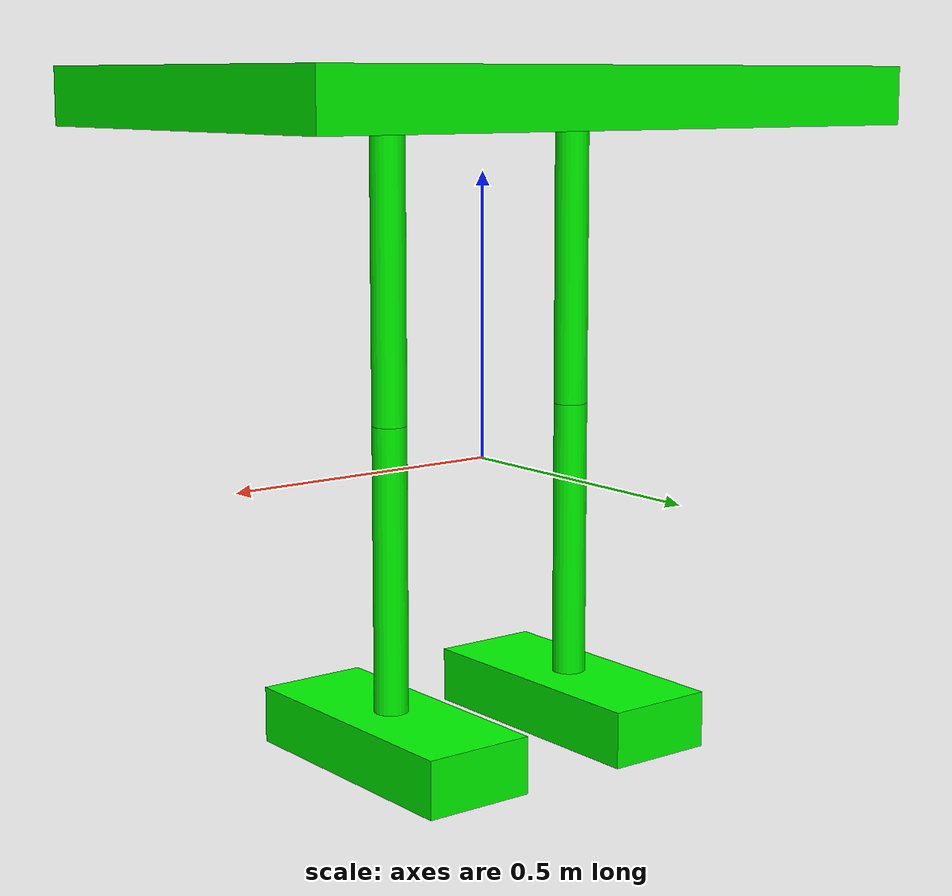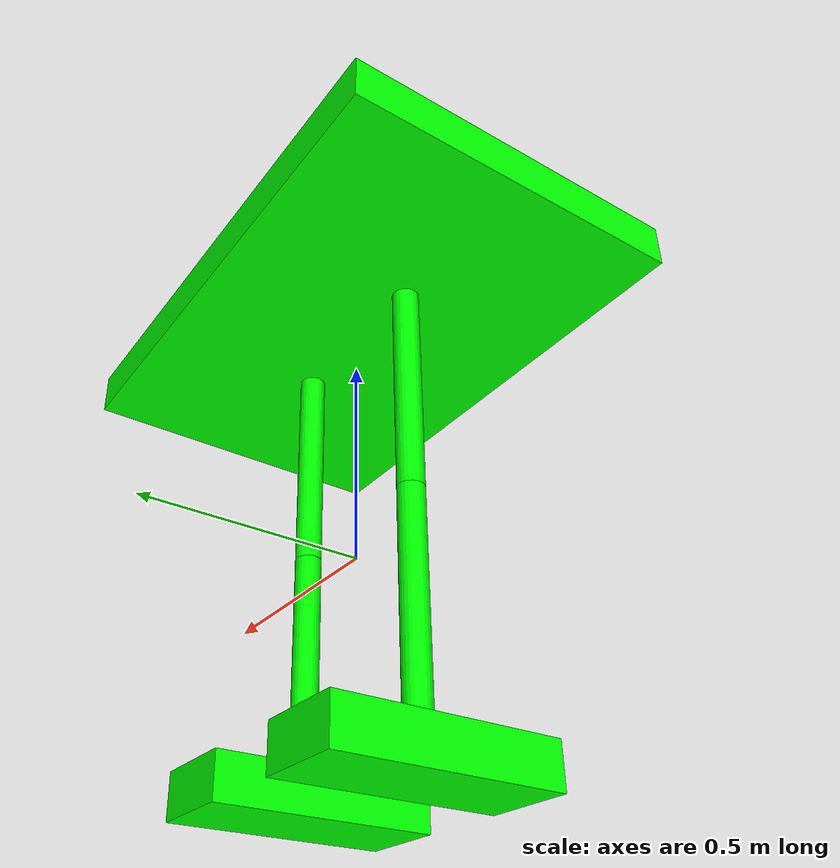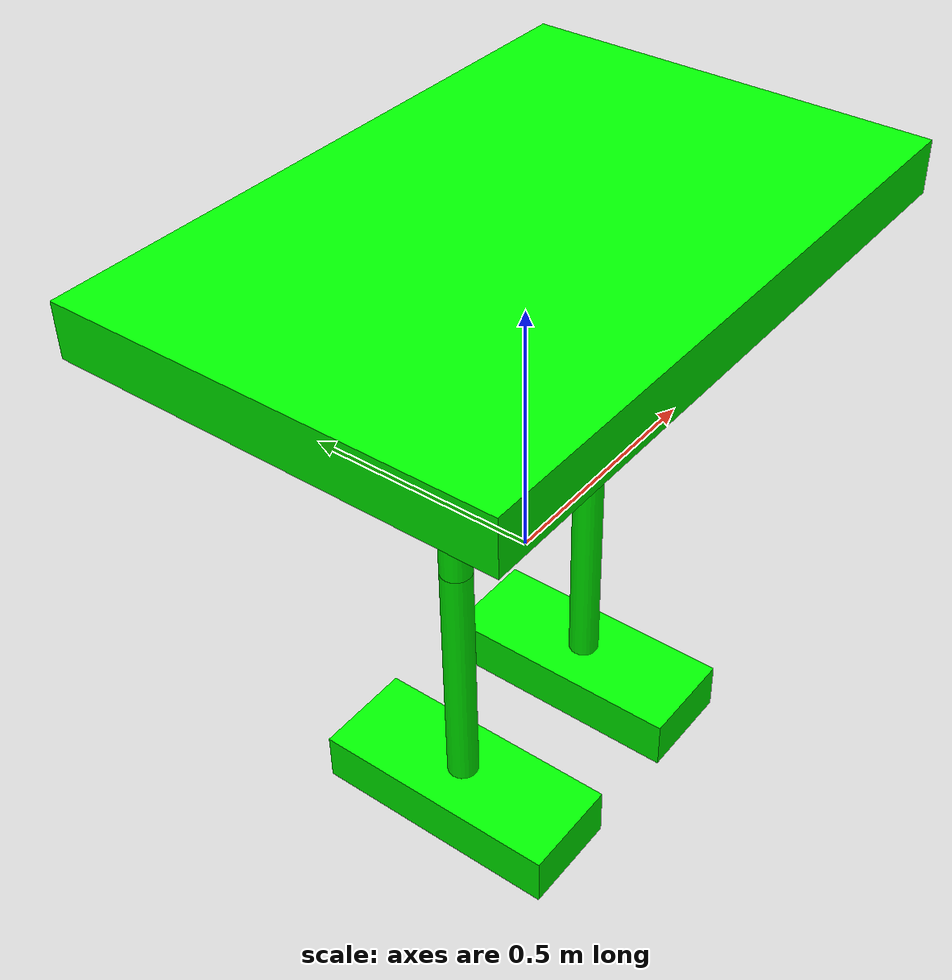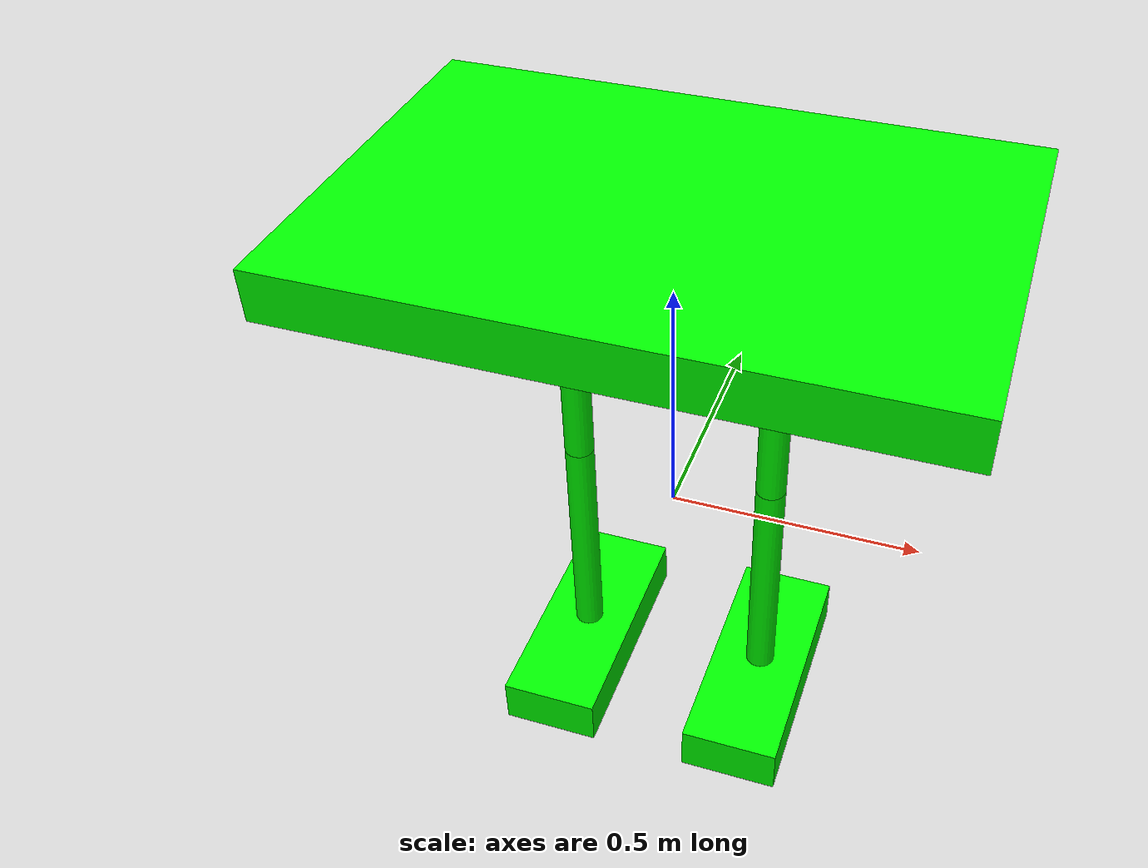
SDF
<?xml version='1.0'?>
<sdf version='1.6'>
  <model name='humanoid'>
    <link name='link_0'>
      <pose frame=''>-0.2 0 -0.471429 0 -0 0</pose>
      <inertial>
        <mass>1</mass>
        <inertia>
          <ixx>0.166667</ixx>
          <ixy>0</ixy>
          <ixz>0</ixz>
          <iyy>0.166667</iyy>
          <iyz>0</iyz>
          <izz>0.166667</izz>
        </inertia>
        <pose frame=''>0 0 0 0 -0 0</pose>
      </inertial>
      <gravity>1</gravity>
      <self_collide>0</self_collide>
      <kinematic>0</kinematic>
      <visual name='visual'>
        <pose frame=''>0 0 0 0 -0 0</pose>
        <geometry>
          <box>
            <size>0.2 0.5 0.1</size>
          </box>
        </geometry>
        <material>
          <lighting>1</lighting>
          <script>
            <uri>file://media/materials/scripts/gazebo.material</uri>
            <name>Gazebo/Grey</name>
          </script>
          <shader type='pixel'>
            <normal_map>__default__</normal_map>
          </shader>
          <ambient>0 1 0 1</ambient>
          <diffuse>0.7 0.7 0.7 1</diffuse>
          <specular>0.01 0.01 0.01 1</specular>
          <emissive>0 0 0 1</emissive>
        </material>
        <transparency>0</transparency>
        <cast_shadows>1</cast_shadows>
      </visual>
      <collision name='collision'>
        <laser_retro>0</laser_retro>
        <max_contacts>10</max_contacts>
        <pose frame=''>0 0 0 0 -0 0</pose>
        <geometry>
          <box>
            <size>0.2 0.5 0.1</size>
          </box>
        </geometry>
        <surface>
          <friction>
            <ode>
              <mu>1</mu>
              <mu2>1</mu2>
              <fdir1>0 0 0</fdir1>
              <slip1>0</slip1>
              <slip2>0</slip2>
            </ode>
            <torsional>
              <coefficient>1</coefficient>
              <patch_radius>0</patch_radius>
              <surface_radius>0</surface_radius>
              <use_patch_radius>1</use_patch_radius>
              <ode>
                <slip>0</slip>
              </ode>
            </torsional>
          </friction>
          <bounce>
            <restitution_coefficient>0</restitution_coefficient>
            <threshold>1e+06</threshold>
          </bounce>
          <contact>
            <collide_without_contact>0</collide_without_contact>
            <collide_without_contact_bitmask>1</collide_without_contact_bitmask>
            <collide_bitmask>1</collide_bitmask>
            <ode>
              <soft_cfm>0</soft_cfm>
              <soft_erp>0.2</soft_erp>
              <kp>1e+13</kp>
              <kd>1</kd>
              <max_vel>0.01</max_vel>
              <min_depth>0</min_depth>
            </ode>
            <bullet>
              <split_impulse>1</split_impulse>
              <split_impulse_penetration_threshold>-0.01</split_impulse_penetration_threshold>
              <soft_cfm>0</soft_cfm>
              <soft_erp>0.2</soft_erp>
              <kp>1e+13</kp>
              <kd>1</kd>
            </bullet>
          </contact>
        </surface>
      </collision>
    </link>
    <link name='link_0_clone'>
      <pose frame=''>0.2 0 -0.471429 0 -0 0</pose>
      <inertial>
        <mass>1</mass>
        <inertia>
          <ixx>0.166667</ixx>
          <ixy>0</ixy>
          <ixz>0</ixz>
          <iyy>0.166667</iyy>
          <iyz>0</iyz>
          <izz>0.166667</izz>
        </inertia>
        <pose frame=''>0 0 0 0 -0 0</pose>
      </inertial>
      <self_collide>0</self_collide>
      <kinematic>0</kinematic>
      <gravity>1</gravity>
      <visual name='visual'>
        <pose frame=''>0 0 0 0 -0 0</pose>
        <geometry>
          <box>
            <size>0.2 0.5 0.1</size>
          </box>
        </geometry>
        <material>
          <lighting>1</lighting>
          <script>
            <uri>file://media/materials/scripts/gazebo.material</uri>
            <name>Gazebo/Grey</name>
          </script>
          <shader type='pixel'>
            <normal_map>__default__</normal_map>
          </shader>
          <ambient>0 1 0 1</ambient>
          <diffuse>0.7 0.7 0.7 1</diffuse>
          <specular>0.01 0.01 0.01 1</specular>
          <emissive>0 0 0 1</emissive>
        </material>
        <transparency>0</transparency>
        <cast_shadows>1</cast_shadows>
      </visual>
      <collision name='collision'>
        <laser_retro>0</laser_retro>
        <max_contacts>10</max_contacts>
        <pose frame=''>0 0 0 0 -0 0</pose>
        <geometry>
          <box>
            <size>0.2 0.5 0.1</size>
          </box>
        </geometry>
        <surface>
          <friction>
            <ode>
              <mu>1</mu>
              <mu2>1</mu2>
              <fdir1>0 0 0</fdir1>
              <slip1>0</slip1>
              <slip2>0</slip2>
            </ode>
            <torsional>
              <coefficient>1</coefficient>
              <patch_radius>0</patch_radius>
              <surface_radius>0</surface_radius>
              <use_patch_radius>1</use_patch_radius>
              <ode>
                <slip>0</slip>
              </ode>
            </torsional>
          </friction>
          <bounce>
            <restitution_coefficient>0</restitution_coefficient>
            <threshold>1e+06</threshold>
          </bounce>
          <contact>
            <collide_without_contact>0</collide_without_contact>
            <collide_without_contact_bitmask>1</collide_without_contact_bitmask>
            <collide_bitmask>1</collide_bitmask>
            <ode>
              <soft_cfm>0</soft_cfm>
              <soft_erp>0.2</soft_erp>
              <kp>1e+13</kp>
              <kd>1</kd>
              <max_vel>0.01</max_vel>
              <min_depth>0</min_depth>
            </ode>
            <bullet>
              <split_impulse>1</split_impulse>
              <split_impulse_penetration_threshold>-0.01</split_impulse_penetration_threshold>
              <soft_cfm>0</soft_cfm>
              <soft_erp>0.2</soft_erp>
              <kp>1e+13</kp>
              <kd>1</kd>
            </bullet>
          </contact>
        </surface>
      </collision>
    </link>
    <link name='link_1'>
      <pose frame=''>-0.2 0 -0.171429 0 -0 0</pose>
      <inertial>
        <mass>1</mass>
        <inertia>
          <ixx>0.145833</ixx>
          <ixy>0</ixy>
          <ixz>0</ixz>
          <iyy>0.145833</iyy>
          <iyz>0</iyz>
          <izz>0.125</izz>
        </inertia>
        <pose frame=''>0 0 0 0 -0 0</pose>
      </inertial>
      <gravity>1</gravity>
      <self_collide>0</self_collide>
      <kinematic>0</kinematic>
      <visual name='visual'>
        <pose frame=''>0 0 0 0 -0 0</pose>
        <geometry>
          <cylinder>
            <radius>0.03</radius>
            <length>0.5</length>
          </cylinder>
        </geometry>
        <material>
          <lighting>1</lighting>
          <script>
            <uri>file://media/materials/scripts/gazebo.material</uri>
            <name>Gazebo/Grey</name>
          </script>
          <shader type='pixel'>
            <normal_map>__default__</normal_map>
          </shader>
          <ambient>0 1 0 1</ambient>
          <diffuse>0.7 0.7 0.7 1</diffuse>
          <specular>0.01 0.01 0.01 1</specular>
          <emissive>0 0 0 1</emissive>
        </material>
        <transparency>0</transparency>
        <cast_shadows>1</cast_shadows>
      </visual>
      <collision name='collision'>
        <laser_retro>0</laser_retro>
        <max_contacts>10</max_contacts>
        <pose frame=''>0 0 0 0 -0 0</pose>
        <geometry>
          <cylinder>
            <radius>0.03</radius>
            <length>0.5</length>
          </cylinder>
        </geometry>
        <surface>
          <friction>
            <ode>
              <mu>1</mu>
              <mu2>1</mu2>
              <fdir1>0 0 0</fdir1>
              <slip1>0</slip1>
              <slip2>0</slip2>
            </ode>
            <torsional>
              <coefficient>1</coefficient>
              <patch_radius>0</patch_radius>
              <surface_radius>0</surface_radius>
              <use_patch_radius>1</use_patch_radius>
              <ode>
                <slip>0</slip>
              </ode>
            </torsional>
          </friction>
          <bounce>
            <restitution_coefficient>0</restitution_coefficient>
            <threshold>1e+06</threshold>
          </bounce>
          <contact>
            <collide_without_contact>0</collide_without_contact>
            <collide_without_contact_bitmask>1</collide_without_contact_bitmask>
            <collide_bitmask>1</collide_bitmask>
            <ode>
              <soft_cfm>0</soft_cfm>
              <soft_erp>0.2</soft_erp>
              <kp>1e+13</kp>
              <kd>1</kd>
              <max_vel>0.01</max_vel>
              <min_depth>0</min_depth>
            </ode>
            <bullet>
              <split_impulse>1</split_impulse>
              <split_impulse_penetration_threshold>-0.01</split_impulse_penetration_threshold>
              <soft_cfm>0</soft_cfm>
              <soft_erp>0.2</soft_erp>
              <kp>1e+13</kp>
              <kd>1</kd>
            </bullet>
          </contact>
        </surface>
      </collision>
    </link>
    <link name='link_1_clone'>
      <pose frame=''>-0.2 0 0.328571 0 -0 0</pose>
      <inertial>
        <mass>1</mass>
        <inertia>
          <ixx>0.145833</ixx>
          <ixy>0</ixy>
          <ixz>0</ixz>
          <iyy>0.145833</iyy>
          <iyz>0</iyz>
          <izz>0.125</izz>
        </inertia>
        <pose frame=''>0 0 0 0 -0 0</pose>
      </inertial>
      <self_collide>0</self_collide>
      <kinematic>0</kinematic>
      <gravity>1</gravity>
      <visual name='visual'>
        <pose frame=''>0 0 0 0 -0 0</pose>
        <geometry>
          <cylinder>
            <radius>0.03</radius>
            <length>0.5</length>
          </cylinder>
        </geometry>
        <material>
          <lighting>1</lighting>
          <script>
            <uri>file://media/materials/scripts/gazebo.material</uri>
            <name>Gazebo/Grey</name>
          </script>
          <shader type='pixel'>
            <normal_map>__default__</normal_map>
          </shader>
          <ambient>0 1 0 1</ambient>
          <diffuse>0.7 0.7 0.7 1</diffuse>
          <specular>0.01 0.01 0.01 1</specular>
          <emissive>0 0 0 1</emissive>
        </material>
        <transparency>0</transparency>
        <cast_shadows>1</cast_shadows>
      </visual>
      <collision name='collision'>
        <laser_retro>0</laser_retro>
        <max_contacts>10</max_contacts>
        <pose frame=''>0 0 0 0 -0 0</pose>
        <geometry>
          <cylinder>
            <radius>0.03</radius>
            <length>0.5</length>
          </cylinder>
        </geometry>
        <surface>
          <friction>
            <ode>
              <mu>1</mu>
              <mu2>1</mu2>
              <fdir1>0 0 0</fdir1>
              <slip1>0</slip1>
              <slip2>0</slip2>
            </ode>
            <torsional>
              <coefficient>1</coefficient>
              <patch_radius>0</patch_radius>
              <surface_radius>0</surface_radius>
              <use_patch_radius>1</use_patch_radius>
              <ode>
                <slip>0</slip>
              </ode>
            </torsional>
          </friction>
          <bounce>
            <restitution_coefficient>0</restitution_coefficient>
            <threshold>1e+06</threshold>
          </bounce>
          <contact>
            <collide_without_contact>0</collide_without_contact>
            <collide_without_contact_bitmask>1</collide_without_contact_bitmask>
            <collide_bitmask>1</collide_bitmask>
            <ode>
              <soft_cfm>0</soft_cfm>
              <soft_erp>0.2</soft_erp>
              <kp>1e+13</kp>
              <kd>1</kd>
              <max_vel>0.01</max_vel>
              <min_depth>0</min_depth>
            </ode>
            <bullet>
              <split_impulse>1</split_impulse>
              <split_impulse_penetration_threshold>-0.01</split_impulse_penetration_threshold>
              <soft_cfm>0</soft_cfm>
              <soft_erp>0.2</soft_erp>
              <kp>1e+13</kp>
              <kd>1</kd>
            </bullet>
          </contact>
        </surface>
      </collision>
    </link>
    <link name='link_1_clone_0'>
      <pose frame=''>0.2 0 -0.171429 0 -0 0</pose>
      <inertial>
        <mass>1</mass>
        <inertia>
          <ixx>0.145833</ixx>
          <ixy>0</ixy>
          <ixz>0</ixz>
          <iyy>0.145833</iyy>
          <iyz>0</iyz>
          <izz>0.125</izz>
        </inertia>
        <pose frame=''>0 0 0 0 -0 0</pose>
      </inertial>
      <self_collide>0</self_collide>
      <kinematic>0</kinematic>
      <gravity>1</gravity>
      <visual name='visual'>
        <pose frame=''>0 0 0 0 -0 0</pose>
        <geometry>
          <cylinder>
            <radius>0.03</radius>
            <length>0.5</length>
          </cylinder>
        </geometry>
        <material>
          <lighting>1</lighting>
          <script>
            <uri>file://media/materials/scripts/gazebo.material</uri>
            <name>Gazebo/Grey</name>
          </script>
          <shader type='pixel'>
            <normal_map>__default__</normal_map>
          </shader>
          <ambient>0 1 0 1</ambient>
          <diffuse>0.7 0.7 0.7 1</diffuse>
          <specular>0.01 0.01 0.01 1</specular>
          <emissive>0 0 0 1</emissive>
        </material>
        <transparency>0</transparency>
        <cast_shadows>1</cast_shadows>
      </visual>
      <collision name='collision'>
        <laser_retro>0</laser_retro>
        <max_contacts>10</max_contacts>
        <pose frame=''>0 0 0 0 -0 0</pose>
        <geometry>
          <cylinder>
            <radius>0.03</radius>
            <length>0.5</length>
          </cylinder>
        </geometry>
        <surface>
          <friction>
            <ode>
              <mu>1</mu>
              <mu2>1</mu2>
              <fdir1>0 0 0</fdir1>
              <slip1>0</slip1>
              <slip2>0</slip2>
            </ode>
            <torsional>
              <coefficient>1</coefficient>
              <patch_radius>0</patch_radius>
              <surface_radius>0</surface_radius>
              <use_patch_radius>1</use_patch_radius>
              <ode>
                <slip>0</slip>
              </ode>
            </torsional>
          </friction>
          <bounce>
            <restitution_coefficient>0</restitution_coefficient>
            <threshold>1e+06</threshold>
          </bounce>
          <contact>
            <collide_without_contact>0</collide_without_contact>
            <collide_without_contact_bitmask>1</collide_without_contact_bitmask>
            <collide_bitmask>1</collide_bitmask>
            <ode>
              <soft_cfm>0</soft_cfm>
              <soft_erp>0.2</soft_erp>
              <kp>1e+13</kp>
              <kd>1</kd>
              <max_vel>0.01</max_vel>
              <min_depth>0</min_depth>
            </ode>
            <bullet>
              <split_impulse>1</split_impulse>
              <split_impulse_penetration_threshold>-0.01</split_impulse_penetration_threshold>
              <soft_cfm>0</soft_cfm>
              <soft_erp>0.2</soft_erp>
              <kp>1e+13</kp>
              <kd>1</kd>
            </bullet>
          </contact>
        </surface>
      </collision>
    </link>
    <link name='link_1_clone_clone'>
      <pose frame=''>0.2 0 0.328571 0 -0 0</pose>
      <inertial>
        <mass>1</mass>
        <inertia>
          <ixx>0.145833</ixx>
          <ixy>0</ixy>
          <ixz>0</ixz>
          <iyy>0.145833</iyy>
          <iyz>0</iyz>
          <izz>0.125</izz>
        </inertia>
        <pose frame=''>0 0 0 0 -0 0</pose>
      </inertial>
      <self_collide>0</self_collide>
      <kinematic>0</kinematic>
      <gravity>1</gravity>
      <visual name='visual'>
        <pose frame=''>0 0 0 0 -0 0</pose>
        <geometry>
          <cylinder>
            <radius>0.03</radius>
            <length>0.5</length>
          </cylinder>
        </geometry>
        <material>
          <lighting>1</lighting>
          <script>
            <uri>file://media/materials/scripts/gazebo.material</uri>
            <name>Gazebo/Grey</name>
          </script>
          <shader type='pixel'>
            <normal_map>__default__</normal_map>
          </shader>
          <ambient>0 1 0 1</ambient>
          <diffuse>0.7 0.7 0.7 1</diffuse>
          <specular>0.01 0.01 0.01 1</specular>
          <emissive>0 0 0 1</emissive>
        </material>
        <transparency>0</transparency>
        <cast_shadows>1</cast_shadows>
      </visual>
      <collision name='collision'>
        <laser_retro>0</laser_retro>
        <max_contacts>10</max_contacts>
        <pose frame=''>0 0 0 0 -0 0</pose>
        <geometry>
          <cylinder>
            <radius>0.03</radius>
            <length>0.5</length>
          </cylinder>
        </geometry>
        <surface>
          <friction>
            <ode>
              <mu>1</mu>
              <mu2>1</mu2>
              <fdir1>0 0 0</fdir1>
              <slip1>0</slip1>
              <slip2>0</slip2>
            </ode>
            <torsional>
              <coefficient>1</coefficient>
              <patch_radius>0</patch_radius>
              <surface_radius>0</surface_radius>
              <use_patch_radius>1</use_patch_radius>
              <ode>
                <slip>0</slip>
              </ode>
            </torsional>
          </friction>
          <bounce>
            <restitution_coefficient>0</restitution_coefficient>
            <threshold>1e+06</threshold>
          </bounce>
          <contact>
            <collide_without_contact>0</collide_without_contact>
            <collide_without_contact_bitmask>1</collide_without_contact_bitmask>
            <collide_bitmask>1</collide_bitmask>
            <ode>
              <soft_cfm>0</soft_cfm>
              <soft_erp>0.2</soft_erp>
              <kp>1e+13</kp>
              <kd>1</kd>
              <max_vel>0.01</max_vel>
              <min_depth>0</min_depth>
            </ode>
            <bullet>
              <split_impulse>1</split_impulse>
              <split_impulse_penetration_threshold>-0.01</split_impulse_penetration_threshold>
              <soft_cfm>0</soft_cfm>
              <soft_erp>0.2</soft_erp>
              <kp>1e+13</kp>
              <kd>1</kd>
            </bullet>
          </contact>
        </surface>
      </collision>
    </link>
    <link name='link_3'>
      <pose frame=''>0 0 0.628571 0 -0 0</pose>
      <inertial>
        <mass>1</mass>
        <inertia>
          <ixx>0.166667</ixx>
          <ixy>0</ixy>
          <ixz>0</ixz>
          <iyy>0.166667</iyy>
          <iyz>0</iyz>
          <izz>0.166667</izz>
        </inertia>
        <pose frame=''>0 0 0 0 -0 0</pose>
      </inertial>
      <gravity>1</gravity>
      <self_collide>0</self_collide>
      <kinematic>0</kinematic>
      <visual name='visual'>
        <pose frame=''>0 0 0 0 -0 0</pose>
        <geometry>
          <box>
            <size>1.2 0.8 0.1</size>
          </box>
        </geometry>
        <material>
          <lighting>1</lighting>
          <script>
            <uri>file://media/materials/scripts/gazebo.material</uri>
            <name>Gazebo/Grey</name>
          </script>
          <shader type='pixel'>
            <normal_map>__default__</normal_map>
          </shader>
          <ambient>0 1 0 1</ambient>
          <diffuse>0.7 0.7 0.7 1</diffuse>
          <specular>0.01 0.01 0.01 1</specular>
          <emissive>0 0 0 1</emissive>
        </material>
        <transparency>0</transparency>
        <cast_shadows>1</cast_shadows>
      </visual>
      <collision name='collision'>
        <laser_retro>0</laser_retro>
        <max_contacts>10</max_contacts>
        <pose frame=''>0 0 0 0 -0 0</pose>
        <geometry>
          <box>
            <size>1.2 0.8 0.1</size>
          </box>
        </geometry>
        <surface>
          <friction>
            <ode>
              <mu>1</mu>
              <mu2>1</mu2>
              <fdir1>0 0 0</fdir1>
              <slip1>0</slip1>
              <slip2>0</slip2>
            </ode>
            <torsional>
              <coefficient>1</coefficient>
              <patch_radius>0</patch_radius>
              <surface_radius>0</surface_radius>
              <use_patch_radius>1</use_patch_radius>
              <ode>
                <slip>0</slip>
              </ode>
            </torsional>
          </friction>
          <bounce>
            <restitution_coefficient>0</restitution_coefficient>
            <threshold>1e+06</threshold>
          </bounce>
          <contact>
            <collide_without_contact>0</collide_without_contact>
            <collide_without_contact_bitmask>1</collide_without_contact_bitmask>
            <collide_bitmask>1</collide_bitmask>
            <ode>
              <soft_cfm>0</soft_cfm>
              <soft_erp>0.2</soft_erp>
              <kp>1e+13</kp>
              <kd>1</kd>
              <max_vel>0.01</max_vel>
              <min_depth>0</min_depth>
            </ode>
            <bullet>
              <split_impulse>1</split_impulse>
              <split_impulse_penetration_threshold>-0.01</split_impulse_penetration_threshold>
              <soft_cfm>0</soft_cfm>
              <soft_erp>0.2</soft_erp>
              <kp>1e+13</kp>
              <kd>1</kd>
            </bullet>
          </contact>
        </surface>
      </collision>
    </link>
    <joint name='link_1_JOINT_3' type='fixed'>
      <parent>link_1</parent>
      <child>link_0</child>
      <pose frame=''>0 0 0 0 -0 0</pose>
      <physics>
        <ode>
          <limit>
            <cfm>0</cfm>
            <erp>0.2</erp>
          </limit>
          <suspension>
            <cfm>0</cfm>
            <erp>0.2</erp>
          </suspension>
        </ode>
      </physics>
    </joint>
    <joint name='link_1_clone_0_JOINT_2' type='fixed'>
      <parent>link_1_clone_0</parent>
      <child>link_0_clone</child>
      <pose frame=''>0 0 0 0 -0 0</pose>
      <physics>
        <ode>
          <limit>
            <cfm>0</cfm>
            <erp>0.2</erp>
          </limit>
          <suspension>
            <cfm>0</cfm>
            <erp>0.2</erp>
          </suspension>
        </ode>
      </physics>
    </joint>
    <joint name='link_1_clone_JOINT_1' type='universal'>
      <parent>link_1_clone</parent>
      <child>link_1</child>
      <pose frame=''>0 0 0 0 -0 0</pose>
      <axis>
        <xyz>1 0 0</xyz>
        <use_parent_model_frame>0</use_parent_model_frame>
        <limit>
          <lower>-0.5</lower>
          <upper>0.5</upper>
          <effort>-1</effort>
          <velocity>-1</velocity>
        </limit>
        <dynamics>
          <spring_reference>0</spring_reference>
          <spring_stiffness>0</spring_stiffness>
          <damping>0</damping>
        </dynamics>
      </axis>
      <axis2>
        <xyz>0 1 0</xyz>
        <use_parent_model_frame>0</use_parent_model_frame>
        <dynamics>
          <spring_reference>0</spring_reference>
          <spring_stiffness>0</spring_stiffness>
          <damping>0</damping>
        </dynamics>
        <limit>
          <lower>-0.5</lower>
          <upper>0.5</upper>
          <effort>-1</effort>
          <velocity>-1</velocity>
        </limit>
      </axis2>
      <physics>
        <ode>
          <limit>
            <cfm>0</cfm>
            <erp>0.2</erp>
          </limit>
          <suspension>
            <cfm>0</cfm>
            <erp>0.2</erp>
          </suspension>
        </ode>
      </physics>
    </joint>
    <joint name='link_1_clone_clone_JOINT_4' type='universal'>
      <parent>link_1_clone_clone</parent>
      <child>link_1_clone_0</child>
      <pose frame=''>0 0 0 0 -0 0</pose>
      <axis>
        <xyz>1 0 0</xyz>
        <use_parent_model_frame>0</use_parent_model_frame>
        <limit>
          <lower>-0.5</lower>
          <upper>0.5</upper>
          <effort>-1</effort>
          <velocity>-1</velocity>
        </limit>
        <dynamics>
          <spring_reference>0</spring_reference>
          <spring_stiffness>0</spring_stiffness>
          <damping>0</damping>
        </dynamics>
      </axis>
      <axis2>
        <xyz>0 1 0</xyz>
        <use_parent_model_frame>0</use_parent_model_frame>
        <dynamics>
          <spring_reference>0</spring_reference>
          <spring_stiffness>0</spring_stiffness>
          <damping>0</damping>
        </dynamics>
        <limit>
          <lower>-0.5</lower>
          <upper>0.5</upper>
          <effort>-1</effort>
          <velocity>-1</velocity>
        </limit>
      </axis2>
      <physics>
        <ode>
          <limit>
            <cfm>0</cfm>
            <erp>0.2</erp>
          </limit>
          <suspension>
            <cfm>0</cfm>
            <erp>0.2</erp>
          </suspension>
        </ode>
      </physics>
    </joint>
    <joint name='link_3_JOINT_5' type='fixed'>
      <parent>link_3</parent>
      <child>link_1_clone</child>
      <pose frame=''>0 0 0 0 -0 0</pose>
      <physics>
        <ode>
          <limit>
            <cfm>0</cfm>
            <erp>0.2</erp>
          </limit>
          <suspension>
            <cfm>0</cfm>
            <erp>0.2</erp>
          </suspension>
        </ode>
      </physics>
    </joint>
    <joint name='link_3_JOINT_6' type='fixed'>
      <parent>link_3</parent>
      <child>link_1_clone_clone</child>
      <pose frame=''>0 0 0 0 -0 0</pose>
      <physics>
        <ode>
          <limit>
            <cfm>0</cfm>
            <erp>0.2</erp>
          </limit>
          <suspension>
            <cfm>0</cfm>
            <erp>0.2</erp>
          </suspension>
        </ode>
      </physics>
    </joint>
    <static>0</static>
    <allow_auto_disable>1</allow_auto_disable>
  </model>
</sdf>
